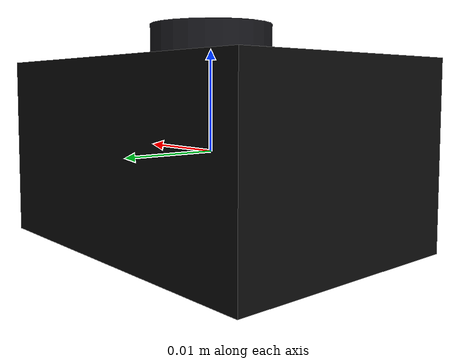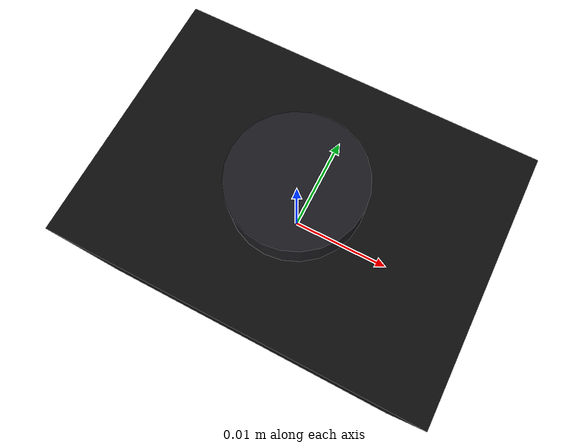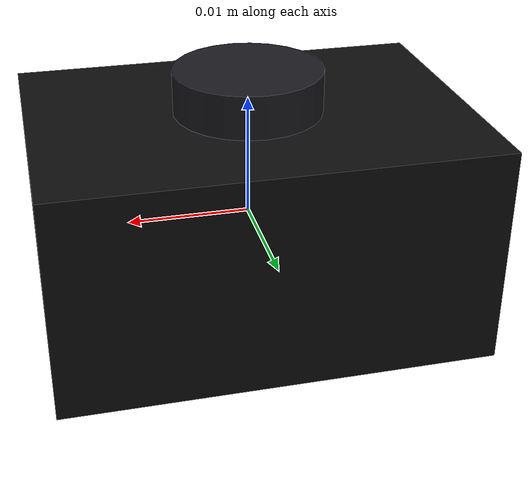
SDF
<?xml version="1.0" encoding="UTF-8"?>
<sdf version="1.9">
  <model name="tf_luna_up">
    <pose>0 0 0 0 0 0</pose>
    <self_collide>false</self_collide>
    <static>false</static>
    <link name="tf_luna_up_link">
      <inertial>
        <mass>0.005</mass>
        <inertia>
          <ixx>0.000001</ixx>
          <iyy>0.000001</iyy>
          <izz>0.000001</izz>
          <ixy>0.0</ixy>
          <ixz>0.0</ixz>
          <iyz>0.0</iyz>
        </inertia>
      </inertial>
      <visual name="tf_luna_up/visual/body">
        <geometry>
          <box>
            <size>0.035 0.025 0.018</size>
          </box>
        </geometry>
        <material>
          <ambient>0.05 0.05 0.05 1</ambient>
          <diffuse>0.05 0.05 0.05 1</diffuse>
        </material>
      </visual>
      <visual name="tf_luna_up/visual/lens">
        <pose>0 0 0.0105 0 0 0</pose>
        <geometry>
          <cylinder>
            <radius>0.006</radius>
            <length>0.004</length>
          </cylinder>
        </geometry>
        <material>
          <ambient>0.1 0.1 0.12 1</ambient>
          <diffuse>0.1 0.1 0.12 1</diffuse>
          <specular>0.8 0.8 0.9 1</specular>
        </material>
      </visual>
      <sensor name="ceiling_rangefinder" type="gpu_lidar">
        <gz_frame_id>tf_luna_up_link</gz_frame_id>
        <pose>0 0 0 0 -1.5708 0</pose>
        <update_rate>100</update_rate>
        <ray>
          <scan>
            <horizontal>
              <samples>1</samples>
              <resolution>1</resolution>
              <min_angle>0</min_angle>
              <max_angle>0</max_angle>
            </horizontal>
            <vertical>
              <samples>1</samples>
              <resolution>1</resolution>
              <min_angle>0</min_angle>
              <max_angle>0</max_angle>
            </vertical>
          </scan>
          <range>
            <min>0.05</min>
            <max>12.0</max>
            <resolution>0.01</resolution>
          </range>
          <noise>
            <type>gaussian</type>
            <mean>0.0</mean>
            <stddev>0.005</stddev>
          </noise>
        </ray>
        <always_on>1</always_on>
        <visualize>true</visualize>
      </sensor>
    </link>
  </model>
</sdf>
